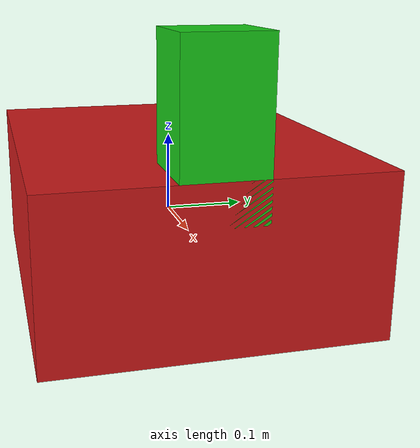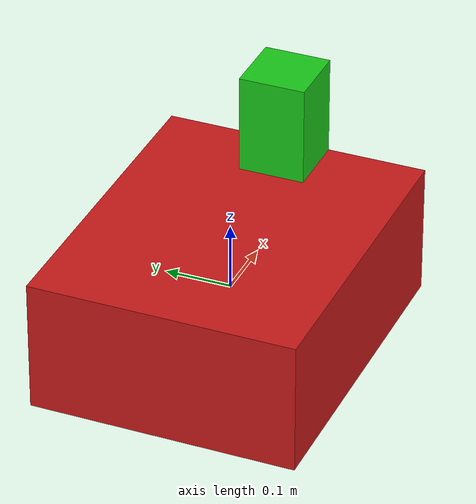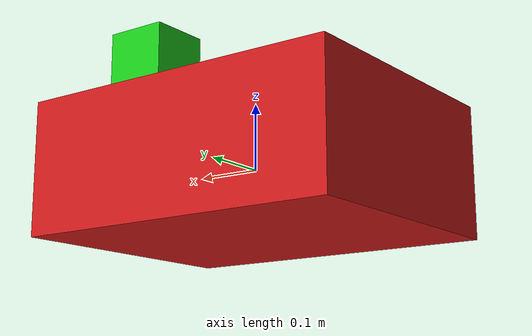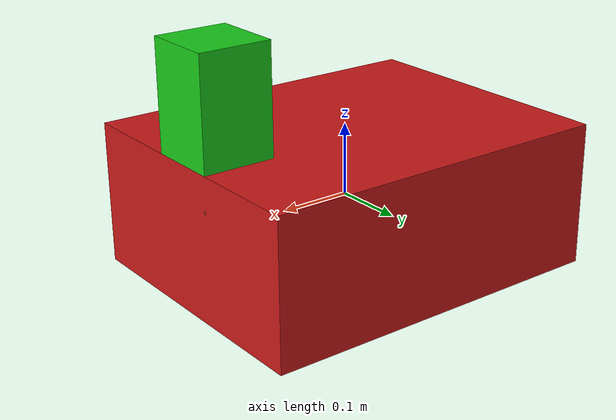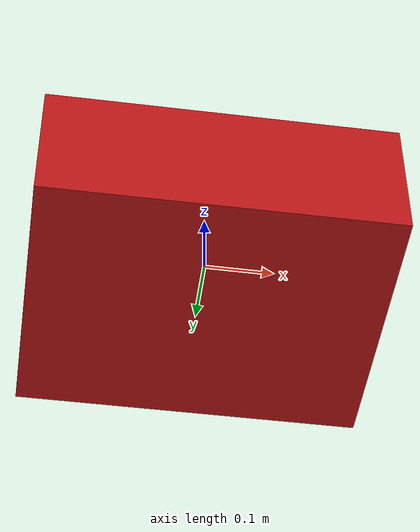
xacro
<?xml version="1.0"?>
<robot name="ground_robot" xmlns:xacro="http://www.ros.org/wiki/xacro">

  <!-- Constants -->
  <xacro:property name="WHEEL_RADIUS" value="0.10" />
  <xacro:property name="WHEEL_WIDTH" value="0.05" />
  <xacro:property name="BASE_LENGTH" value="0.5" />
  <xacro:property name="BASE_WIDTH" value="0.4" />
  <xacro:property name="BASE_HEIGHT" value="0.2" />

  <!-- Base Link -->
  <link name="base_link">
    <inertial>
      <mass value="10.0"/>
      <origin xyz="0 0 0" rpy="0 0 0"/>
      <inertia ixx="0.4" ixy="0.0" ixz="0.0" iyy="0.4" iyz="0.0" izz="0.6"/>
    </inertial>
    <visual>
      <geometry>
        <box size="${BASE_LENGTH} ${BASE_WIDTH} ${BASE_HEIGHT}"/>
      </geometry>
      <material name="red">
        <color rgba="0.8 0.1 0.1 1.0"/>
      </material>
    </visual>
    <collision>
      <geometry>
        <box size="${BASE_LENGTH} ${BASE_WIDTH} ${BASE_HEIGHT}"/>
      </geometry>
    </collision>
  </link>

  <!-- Placeholder for the lifting mechanism -->
  <link name="lifter_arm_link">
    <inertial>
      <mass value="1.0"/>
      <origin xyz="0 0 0.1" rpy="0 0 0"/>
      <inertia ixx="0.01" ixy="0.0" ixz="0.0" iyy="0.01" iyz="0.0" izz="0.01"/>
    </inertial>
    <visual>
      <geometry>
        <box size="0.1 0.1 0.2"/>
      </geometry>
      <material name="green">
        <color rgba="0.1 0.8 0.1 1.0"/>
      </material>
    </visual>
  </link>
  <joint name="lifter_joint" type="fixed">
    <parent link="base_link"/>
    <child link="lifter_arm_link"/>
    <origin xyz="0.2 0 0.15" rpy="0 0 0"/>
  </joint>

  <!-- Gazebo Plugin for Differential Drive Control -->
  <gazebo>
    <plugin name="differential_drive_controller" filename="libgazebo_ros_diff_drive.so">
      <ros>
        <namespace>/</namespace>
      </ros>
      <update_rate>50.0</update_rate>
      <left_joint>left_wheel_joint</left_joint>
      <right_joint>right_wheel_joint</right_joint>
      <wheel_separation>0.4</wheel_separation>
      <wheel_diameter>${2 * WHEEL_RADIUS}</wheel_diameter>
      <command_topic>cmd_vel</command_topic>
      <odometry_topic>odom</odometry_topic>
      <publish_odom>true</publish_odom>
    </plugin>
  </gazebo>

</robot>
